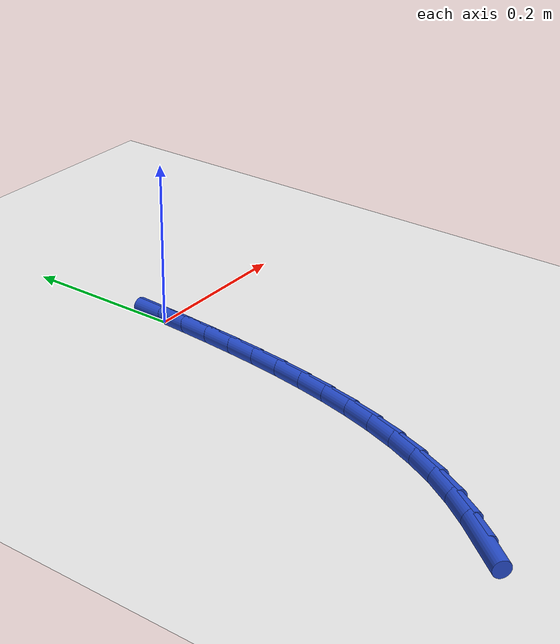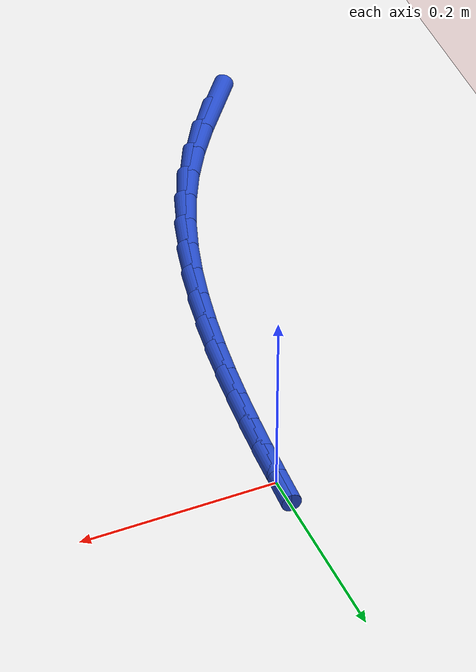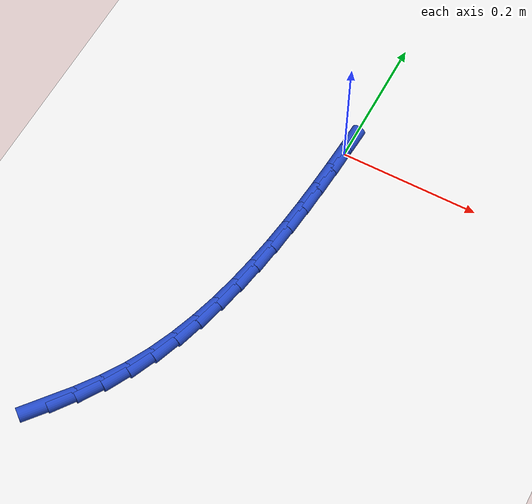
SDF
<sdf version="1.6">
 <world name="default">
  <model name="ground_plane">
   <static>1</static>
   <link name="link">
    <collision name="collision">
     <geometry><plane><normal>0 0 1</normal><size>100 100</size></plane></geometry>
     <surface><friction><ode><mu>100</mu><mu2>50</mu2></ode></friction></surface>
    </collision>
    <visual name="visual">
     <cast_shadows>0</cast_shadows>
     <geometry><plane><normal>0 0 1</normal><size>100 100</size></plane></geometry>
     <material>
      <script><uri>file://media/materials/scripts/gazebo.material</uri><name>Gazebo/WhiteGlow</name></script>
     </material>
    </visual>
   </link>
  </model>
  <model name="line">
   <link name="link_0">
    <pose>-2.45029690981724e-17 2.0816681711721685e-17 0.01 0 1.57 1.5136909945468249</pose>
    <collision name="collision">
     <geometry><cylinder><radius>0.01</radius><length>0.08</length></cylinder></geometry>
    </collision>
    <visual name="visual">
     <material>
      <script><name>Gazebo/Blue</name><uri>file://media/materials/scripts/gazebo.material</uri></script>
     </material>
     <geometry><cylinder><radius>0.01</radius><length>0.08</length></cylinder></geometry>
    </visual>
   </link>
   <link name="link_265">
    <pose>-0.1613418966805942 -0.518777652033053 0.01 0 1.57 0.8845661998125549</pose>
    <collision name="collision">
     <geometry><cylinder><radius>0.01</radius><length>0.08</length></cylinder></geometry>
    </collision>
    <visual name="visual">
     <material>
      <script><name>Gazebo/Blue</name><uri>file://media/materials/scripts/gazebo.material</uri></script>
     </material>
     <geometry><cylinder><radius>0.01</radius><length>0.08</length></cylinder></geometry>
    </visual>
   </link>
   <link name="link_266">
    <pose>-0.13769312082643925 -0.48990309891784045 0.01 0 1.57 0.9378507990338364</pose>
    <collision name="collision">
     <geometry><cylinder><radius>0.01</radius><length>0.08</length></cylinder></geometry>
    </collision>
    <visual name="visual">
     <material>
      <script><name>Gazebo/Blue</name><uri>file://media/materials/scripts/gazebo.material</uri></script>
     </material>
     <geometry><cylinder><radius>0.01</radius><length>0.08</length></cylinder></geometry>
    </visual>
   </link>
   <link name="link_267">
    <pose>-0.11577599032082457 -0.46002842662172855 0.01 0 1.57 1.0074108897028977</pose>
    <collision name="collision">
     <geometry><cylinder><radius>0.01</radius><length>0.08</length></cylinder></geometry>
    </collision>
    <visual name="visual">
     <material>
      <script><name>Gazebo/Blue</name><uri>file://media/materials/scripts/gazebo.material</uri></script>
     </material>
     <geometry><cylinder><radius>0.01</radius><length>0.08</length></cylinder></geometry>
    </visual>
   </link>
   <link name="link_268">
    <pose>-0.09609078601684683 -0.4288649614826409 0.01 0 1.57 1.0867865456336703</pose>
    <collision name="collision">
     <geometry><cylinder><radius>0.01</radius><length>0.08</length></cylinder></geometry>
    </collision>
    <visual name="visual">
     <material>
      <script><name>Gazebo/Blue</name><uri>file://media/materials/scripts/gazebo.material</uri></script>
     </material>
     <geometry><cylinder><radius>0.01</radius><length>0.08</length></cylinder></geometry>
    </visual>
   </link>
   <link name="link_269">
    <pose>-0.07895104012360162 -0.396262421008008 0.01 0 1.57 1.1597932389604686</pose>
    <collision name="collision">
     <geometry><cylinder><radius>0.01</radius><length>0.08</length></cylinder></geometry>
    </collision>
    <visual name="visual">
     <material>
      <script><name>Gazebo/Blue</name><uri>file://media/materials/scripts/gazebo.material</uri></script>
     </material>
     <geometry><cylinder><radius>0.01</radius><length>0.08</length></cylinder></geometry>
    </visual>
   </link>
   <link name="link_270">
    <pose>-0.06420095839014009 -0.3624183198099386 0.01 0 1.57 1.224011387514794</pose>
    <collision name="collision">
     <geometry><cylinder><radius>0.01</radius><length>0.08</length></cylinder></geometry>
    </collision>
    <visual name="visual">
     <material>
      <script><name>Gazebo/Blue</name><uri>file://media/materials/scripts/gazebo.material</uri></script>
     </material>
     <geometry><cylinder><radius>0.01</radius><length>0.08</length></cylinder></geometry>
    </visual>
   </link>
   <link name="link_271">
    <pose>-0.051612187344565914 -0.32758394293352056 0.01 0 1.57 1.279757287687982</pose>
    <collision name="collision">
     <geometry><cylinder><radius>0.01</radius><length>0.08</length></cylinder></geometry>
    </collision>
    <visual name="visual">
     <material>
      <script><name>Gazebo/Blue</name><uri>file://media/materials/scripts/gazebo.material</uri></script>
     </material>
     <geometry><cylinder><radius>0.01</radius><length>0.08</length></cylinder></geometry>
    </visual>
   </link>
   <link name="link_272">
    <pose>-0.04095637351498132 -0.2920105754238386 0.01 0 1.57 1.3274902487818725</pose>
    <collision name="collision">
     <geometry><cylinder><radius>0.01</radius><length>0.08</length></cylinder></geometry>
    </collision>
    <visual name="visual">
     <material>
      <script><name>Gazebo/Blue</name><uri>file://media/materials/scripts/gazebo.material</uri></script>
     </material>
     <geometry><cylinder><radius>0.01</radius><length>0.08</length></cylinder></geometry>
    </visual>
   </link>
   <link name="link_273">
    <pose>-0.03200516342948904 -0.25594950232597874 0.01 0 1.57 1.3676999195624335</pose>
    <collision name="collision">
     <geometry><cylinder><radius>0.01</radius><length>0.08</length></cylinder></geometry>
    </collision>
    <visual name="visual">
     <material>
      <script><name>Gazebo/Blue</name><uri>file://media/materials/scripts/gazebo.material</uri></script>
     </material>
     <geometry><cylinder><radius>0.01</radius><length>0.08</length></cylinder></geometry>
    </visual>
   </link>
   <link name="link_274">
    <pose>-0.024530208232229053 -0.21965198463234173 0.01 0 1.57 1.4014217782868077</pose>
    <collision name="collision">
     <geometry><cylinder><radius>0.01</radius><length>0.08</length></cylinder></geometry>
    </collision>
    <visual name="visual">
     <material>
      <script><name>Gazebo/Blue</name><uri>file://media/materials/scripts/gazebo.material</uri></script>
     </material>
     <geometry><cylinder><radius>0.01</radius><length>0.08</length></cylinder></geometry>
    </visual>
   </link>
   <link name="link_275">
    <pose>-0.018314916919415055 -0.18330801695183274 0.01 0 1.57 1.430625744488174</pose>
    <collision name="collision">
     <geometry><cylinder><radius>0.01</radius><length>0.08</length></cylinder></geometry>
    </collision>
    <visual name="visual">
     <material>
      <script><name>Gazebo/Blue</name><uri>file://media/materials/scripts/gazebo.material</uri></script>
     </material>
     <geometry><cylinder><radius>0.01</radius><length>0.08</length></cylinder></geometry>
    </visual>
   </link>
   <link name="link_276">
    <pose>-0.013179863129690241 -0.14691394090118434 0.01 0 1.57 1.45546012602987</pose>
    <collision name="collision">
     <geometry><cylinder><radius>0.01</radius><length>0.08</length></cylinder></geometry>
    </collision>
    <visual name="visual">
     <material>
      <script><name>Gazebo/Blue</name><uri>file://media/materials/scripts/gazebo.material</uri></script>
     </material>
     <geometry><cylinder><radius>0.01</radius><length>0.08</length></cylinder></geometry>
    </visual>
   </link>
   <link name="link_277">
    <pose>-0.008952945702970486 -0.11042792883053676 0.01 0 1.57 1.475755734523854</pose>
    <collision name="collision">
     <geometry><cylinder><radius>0.01</radius><length>0.08</length></cylinder></geometry>
    </collision>
    <visual name="visual">
     <material>
      <script><name>Gazebo/Blue</name><uri>file://media/materials/scripts/gazebo.material</uri></script>
     </material>
     <geometry><cylinder><radius>0.01</radius><length>0.08</length></cylinder></geometry>
    </visual>
   </link>
   <link name="link_278">
    <pose>-0.005462063479171637 -0.07380815309003019 0.01 0 1.57 1.4914168244109478</pose>
    <collision name="collision">
     <geometry><cylinder><radius>0.01</radius><length>0.08</length></cylinder></geometry>
    </collision>
    <visual name="visual">
     <material>
      <script><name>Gazebo/Blue</name><uri>file://media/materials/scripts/gazebo.material</uri></script>
     </material>
     <geometry><cylinder><radius>0.01</radius><length>0.08</length></cylinder></geometry>
    </visual>
   </link>
   <link name="link_279">
    <pose>-0.0025351152982094702 -0.03701278602980376 0.01 0 1.57 1.5024101723217715</pose>
    <collision name="collision">
     <geometry><cylinder><radius>0.01</radius><length>0.08</length></cylinder></geometry>
    </collision>
    <visual name="visual">
     <material>
      <script><name>Gazebo/Blue</name><uri>file://media/materials/scripts/gazebo.material</uri></script>
     </material>
     <geometry><cylinder><radius>0.01</radius><length>0.08</length></cylinder></geometry>
    </visual>
   </link>
   <link name="link_280">
    <pose>-1.5178830414797062e-17 1.5265566588595902e-16 0.01 0 1.57 1.5087548469140424</pose>
    <collision name="collision">
     <geometry><cylinder><radius>0.01</radius><length>0.08</length></cylinder></geometry>
    </collision>
    <visual name="visual">
     <material>
      <script><name>Gazebo/Blue</name><uri>file://media/materials/scripts/gazebo.material</uri></script>
     </material>
     <geometry><cylinder><radius>0.01</radius><length>0.08</length></cylinder></geometry>
    </visual>
   </link>
  </model>
 </world>
</sdf>
